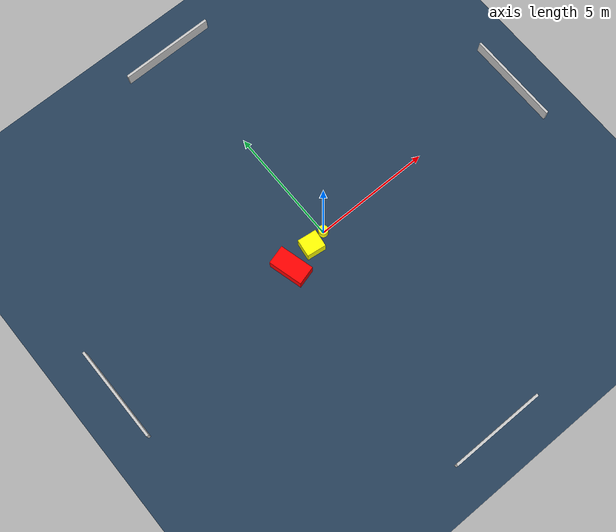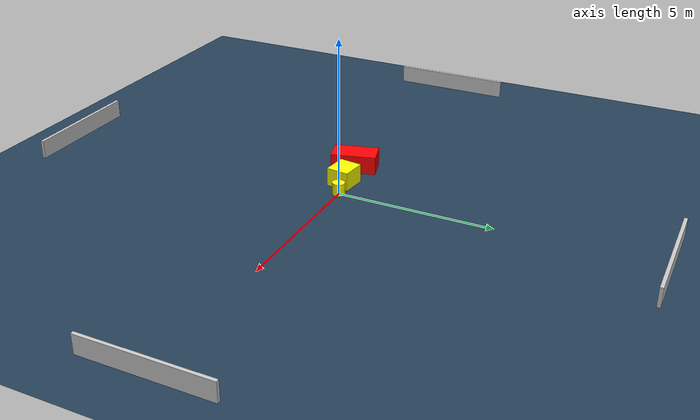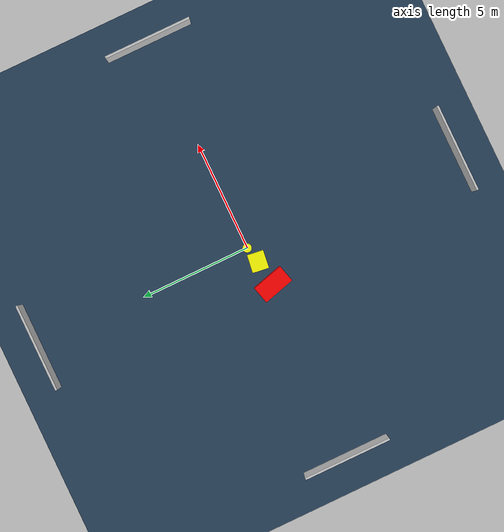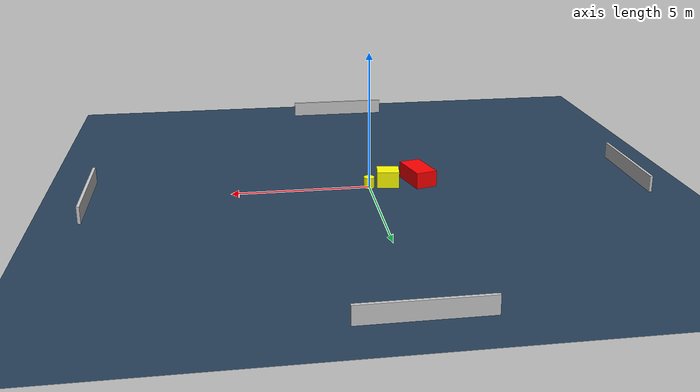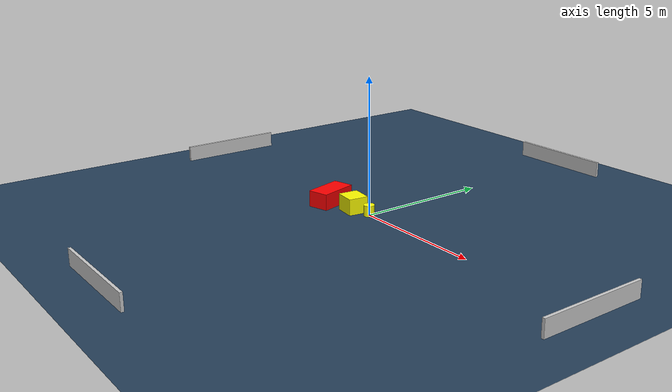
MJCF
<?xml version="1.0" ?>
<mujoco model="generated_environment">
  <option timestep="0.01" integrator="RK4" cone="elliptic"/>
  <default>
    <geom density="1"/>
  </default>
  <asset>
    <texture builtin="gradient" height="3072" name="skybox" rgb1="0.3 0.5 0.7" rgb2="0 0 0" type="skybox" width="512"/>
    <texture builtin="checker" height="300" name="groundplane" rgb1="0.2 0.3 0.4" rgb2="0.1 0.2 0.3" type="2d" width="300"/>
    <material name="groundplane" reflectance="0.2" texrepeat="5 5" texture="groundplane"/>
  </asset>
  <worldbody>
    <light dir="0 0 -1" directional="true" pos="0 0 1.5"/>
    <geom condim="3" friction="0.5 0.005 0.001" material="groundplane" name="floor" pos="0 0 0" size="0 0 0.05" type="plane"/>
    <body name="walls">
      <geom name="wall_1" condim="4" pos="-10.0 0.0 0.3" rgba="0.800000011920929 0.800000011920929 0.800000011920929 1.0" size="0.05 2.0 0.3" type="box"/>
      <geom name="wall_2" condim="4" pos="10.0 0.0 0.3" rgba="0.800000011920929 0.800000011920929 0.800000011920929 1.0" size="0.05 2.0 0.3" type="box"/>
      <geom name="wall_3" condim="4" pos="0.0 -10.0 0.3" rgba="0.800000011920929 0.800000011920929 0.800000011920929 1.0" size="2.0 0.05 0.3" type="box"/>
      <geom name="wall_4" condim="4" pos="0.0 10.0 0.3" rgba="0.800000011920929 0.800000011920929 0.800000011920929 1.0" size="2.0 0.05 0.3" type="box"/>
    </body>
    <body name="robot">
      <joint name="joint_x" type="slide" pos="0 0 0" axis="1 0 0"/>
      <joint name="joint_y" type="slide" pos="0 0 0" axis="0 1 0"/>
      <geom name="robot" type="cylinder" pos="0.0 0.0 0.2" size="0.2 0.2 0.0" mass="5.0" friction="1.0 0.005 0.0001" condim="4" rgba="1.0 1.0 0.0 1.0"/>
    </body>
    <body name="obstacle_1_movable">
      <geom name="obstacle_1_movable" condim="4" pos="-0.7240271517679968 -0.1670264288869192 0.3" euler="0 0 352.77658997264876" friction="0.0 0.005 0.001" rgba="1.0 1.0 0.0 1.0" size="0.4030415642331391 0.3672607114391614 0.3" type="box" mass="0.1"/>
      <joint type="free"/>
    </body>
    <body name="obstacle_2_static">
      <geom name="obstacle_2_static" condim="4" pos="-1.8904736141306215 -0.33905921743304673 0.3" euler="0 0 195.19147059847208" friction="0.0 0.005 0.001" rgba="1.0 0.0 0.0 1.0" size="0.39821485309294813 0.7299829381971437 0.3" type="box"/>
    </body>
  </worldbody>
  <actuator>
    <motor name="actuator_x" joint="joint_x" gear="1" ctrlrange="-1 1"/>
    <motor name="actuator_y" joint="joint_y" gear="1" ctrlrange="-1 1"/>
  </actuator>
</mujoco>
